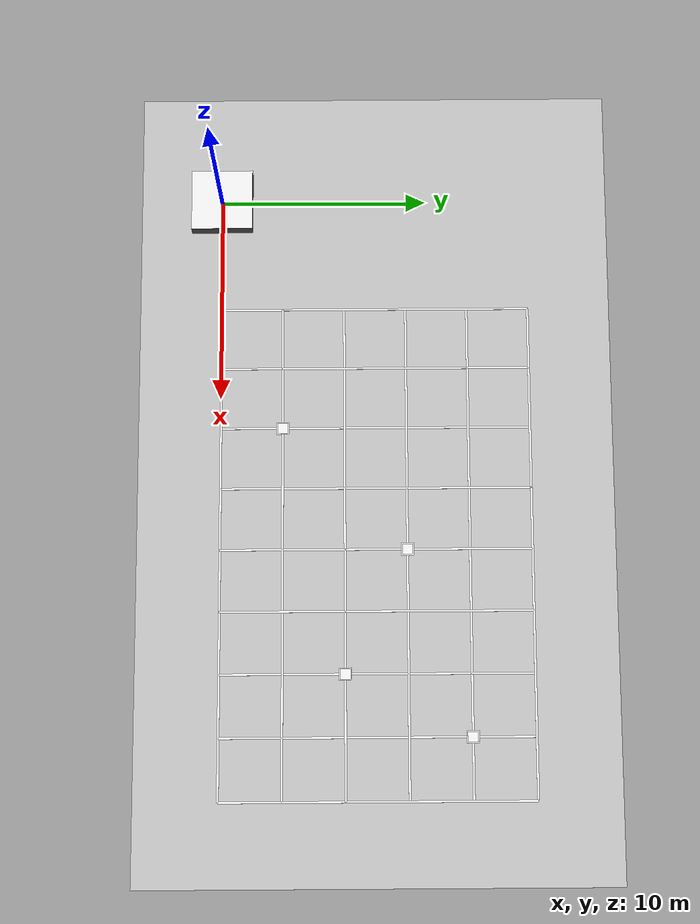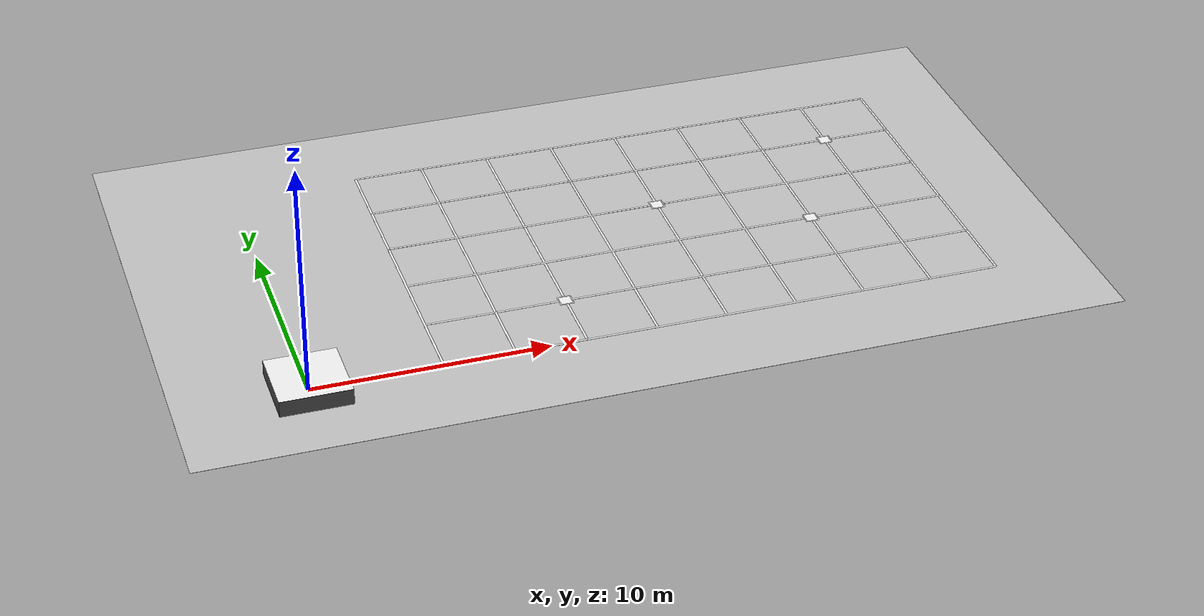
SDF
<?xml version="1.0" ?>
<sdf version="1.9">
  <model name="astroquad_grid_course">
    <static>true</static>

    <link name="course_link">
      <collision name="ground_collision">
        <pose>14.0 7.5 -0.005 0 0 0</pose>
        <geometry>
          <box>
            <size>39.0 23.0 0.01</size>
          </box>
        </geometry>
      </collision>

      <visual name="ground_visual">
        <pose>14.0 7.5 -0.005 0 0 0</pose>
        <geometry>
          <box>
            <size>39.0 23.0 0.01</size>
          </box>
        </geometry>
        <material>
          <ambient>0.8 0.8 0.8 1</ambient>
          <diffuse>0.8 0.8 0.8 1</diffuse>
          <specular>0.02 0.02 0.02 1</specular>
          <pbr>
            <metal>
              <albedo_map>materials/textures/Grass004_2K_Color_tiled3x.jpg</albedo_map>
              <roughness>0.95</roughness>
              <metalness>0.0</metalness>
            </metal>
          </pbr>
        </material>
      </visual>

      <!-- 3m x 3m x 0.7m vertiport box centered at origin, top surface at z = 0.7 -->
      <collision name="vertiport_box_collision">
        <pose>0 0 0.35 0 0 0</pose>
        <geometry>
          <box>
            <size>3.0 3.0 0.7</size>
          </box>
        </geometry>
      </collision>

      <visual name="vertiport_box_visual">
        <pose>0 0 0.35 0 0 0</pose>
        <geometry>
          <box>
            <size>3.0 3.0 0.7</size>
          </box>
        </geometry>
        <material>
          <ambient>0.25 0.25 0.25 1</ambient>
          <diffuse>0.25 0.25 0.25 1</diffuse>
          <specular>0.05 0.05 0.05 1</specular>
        </material>
      </visual>

      <!-- Vertiport top texture (3.0 x 3.0) slightly above the box top.
           Yaw 0deg leaves the texture image-up axis aligned with world +Y,
           90deg left of the previous +X-facing direction. -->
      <visual name="vertiport_top_texture">
        <pose degrees="true">0 0 0.701 0 0 0</pose>
        <geometry>
          <plane>
            <normal>0 0 1</normal>
            <size>3.0 3.0</size>
          </plane>
        </geometry>
        <material>
          <ambient>1 1 1 1</ambient>
          <diffuse>1 1 1 1</diffuse>
          <specular>0 0 0 1</specular>
          <pbr>
            <metal>
              <albedo_map>materials/textures/vertiport.png</albedo_map>
              <roughness>1.0</roughness>
              <metalness>0.0</metalness>
            </metal>
          </pbr>
        </material>
      </visual>

      <!-- 5x8 grid: cells of 3m, X intersections at 5.5..29.5, Y intersections at 0..15. -->
      <!-- White horizontal grid lines (constant Y, span X in [5.5, 29.5], length 24m) -->
      <visual name="grid_line_y0">
        <pose>17.5 0.0 0.006 0 0 0</pose>
        <geometry><box><size>24.0 0.10 0.008</size></box></geometry>
        <material>
          <ambient>1 1 1 1</ambient><diffuse>1 1 1 1</diffuse><emissive>0 0 0 1</emissive><specular>0.05 0.05 0.05 1</specular>
        </material>
      </visual>
      <visual name="grid_line_y3">
        <pose>17.5 3.0 0.006 0 0 0</pose>
        <geometry><box><size>24.0 0.10 0.008</size></box></geometry>
        <material>
          <ambient>1 1 1 1</ambient><diffuse>1 1 1 1</diffuse><emissive>0 0 0 1</emissive><specular>0.05 0.05 0.05 1</specular>
        </material>
      </visual>
      <visual name="grid_line_y6">
        <pose>17.5 6.0 0.006 0 0 0</pose>
        <geometry><box><size>24.0 0.10 0.008</size></box></geometry>
        <material>
          <ambient>1 1 1 1</ambient><diffuse>1 1 1 1</diffuse><emissive>0 0 0 1</emissive><specular>0.05 0.05 0.05 1</specular>
        </material>
      </visual>
      <visual name="grid_line_y9">
        <pose>17.5 9.0 0.006 0 0 0</pose>
        <geometry><box><size>24.0 0.10 0.008</size></box></geometry>
        <material>
          <ambient>1 1 1 1</ambient><diffuse>1 1 1 1</diffuse><emissive>0 0 0 1</emissive><specular>0.05 0.05 0.05 1</specular>
        </material>
      </visual>
      <visual name="grid_line_y12">
        <pose>17.5 12.0 0.006 0 0 0</pose>
        <geometry><box><size>24.0 0.10 0.008</size></box></geometry>
        <material>
          <ambient>1 1 1 1</ambient><diffuse>1 1 1 1</diffuse><emissive>0 0 0 1</emissive><specular>0.05 0.05 0.05 1</specular>
        </material>
      </visual>
      <visual name="grid_line_y15">
        <pose>17.5 15.0 0.006 0 0 0</pose>
        <geometry><box><size>24.0 0.10 0.008</size></box></geometry>
        <material>
          <ambient>1 1 1 1</ambient><diffuse>1 1 1 1</diffuse><emissive>0 0 0 1</emissive><specular>0.05 0.05 0.05 1</specular>
        </material>
      </visual>

      <!-- White vertical grid lines (constant X, span Y in [0, 15], length 15m) -->
      <visual name="grid_line_x5_5">
        <pose>5.5 7.5 0.006 0 0 0</pose>
        <geometry><box><size>0.10 15.0 0.008</size></box></geometry>
        <material>
          <ambient>1 1 1 1</ambient><diffuse>1 1 1 1</diffuse><emissive>0 0 0 1</emissive><specular>0.05 0.05 0.05 1</specular>
        </material>
      </visual>
      <visual name="grid_line_x8_5">
        <pose>8.5 7.5 0.006 0 0 0</pose>
        <geometry><box><size>0.10 15.0 0.008</size></box></geometry>
        <material>
          <ambient>1 1 1 1</ambient><diffuse>1 1 1 1</diffuse><emissive>0 0 0 1</emissive><specular>0.05 0.05 0.05 1</specular>
        </material>
      </visual>
      <visual name="grid_line_x11_5">
        <pose>11.5 7.5 0.006 0 0 0</pose>
        <geometry><box><size>0.10 15.0 0.008</size></box></geometry>
        <material>
          <ambient>1 1 1 1</ambient><diffuse>1 1 1 1</diffuse><emissive>0 0 0 1</emissive><specular>0.05 0.05 0.05 1</specular>
        </material>
      </visual>
      <visual name="grid_line_x14_5">
        <pose>14.5 7.5 0.006 0 0 0</pose>
        <geometry><box><size>0.10 15.0 0.008</size></box></geometry>
        <material>
          <ambient>1 1 1 1</ambient><diffuse>1 1 1 1</diffuse><emissive>0 0 0 1</emissive><specular>0.05 0.05 0.05 1</specular>
        </material>
      </visual>
      <visual name="grid_line_x17_5">
        <pose>17.5 7.5 0.006 0 0 0</pose>
        <geometry><box><size>0.10 15.0 0.008</size></box></geometry>
        <material>
          <ambient>1 1 1 1</ambient><diffuse>1 1 1 1</diffuse><emissive>0 0 0 1</emissive><specular>0.05 0.05 0.05 1</specular>
        </material>
      </visual>
      <visual name="grid_line_x20_5">
        <pose>20.5 7.5 0.006 0 0 0</pose>
        <geometry><box><size>0.10 15.0 0.008</size></box></geometry>
        <material>
          <ambient>1 1 1 1</ambient><diffuse>1 1 1 1</diffuse><emissive>0 0 0 1</emissive><specular>0.05 0.05 0.05 1</specular>
        </material>
      </visual>
      <visual name="grid_line_x23_5">
        <pose>23.5 7.5 0.006 0 0 0</pose>
        <geometry><box><size>0.10 15.0 0.008</size></box></geometry>
        <material>
          <ambient>1 1 1 1</ambient><diffuse>1 1 1 1</diffuse><emissive>0 0 0 1</emissive><specular>0.05 0.05 0.05 1</specular>
        </material>
      </visual>
      <visual name="grid_line_x26_5">
        <pose>26.5 7.5 0.006 0 0 0</pose>
        <geometry><box><size>0.10 15.0 0.008</size></box></geometry>
        <material>
          <ambient>1 1 1 1</ambient><diffuse>1 1 1 1</diffuse><emissive>0 0 0 1</emissive><specular>0.05 0.05 0.05 1</specular>
        </material>
      </visual>
      <visual name="grid_line_x29_5">
        <pose>29.5 7.5 0.006 0 0 0</pose>
        <geometry><box><size>0.10 15.0 0.008</size></box></geometry>
        <material>
          <ambient>1 1 1 1</ambient><diffuse>1 1 1 1</diffuse><emissive>0 0 0 1</emissive><specular>0.05 0.05 0.05 1</specular>
        </material>
      </visual>

      <visual name="marker_id1_quiet_zone">
        <pose>26.5 12.0 0.011 0 0 0</pose>
        <geometry><plane><normal>0 0 1</normal><size>0.60 0.60</size></plane></geometry>
        <material>
          <ambient>1 1 1 1</ambient><diffuse>1 1 1 1</diffuse><specular>0 0 0 1</specular>
        </material>
      </visual>
      <visual name="marker_id1_texture">
        <pose>26.5 12.0 0.012 0 0 0</pose>
        <geometry><plane><normal>0 0 1</normal><size>0.50 0.50</size></plane></geometry>
        <material>
          <ambient>1 1 1 1</ambient><diffuse>1 1 1 1</diffuse><specular>0 0 0 1</specular>
          <pbr><metal>
            <albedo_map>materials/textures/aruco_id1.png</albedo_map>
            <roughness>1.0</roughness><metalness>0.0</metalness>
          </metal></pbr>
        </material>
      </visual>

      <visual name="marker_id2_quiet_zone">
        <pose>23.5 6.0 0.011 0 0 0</pose>
        <geometry><plane><normal>0 0 1</normal><size>0.60 0.60</size></plane></geometry>
        <material>
          <ambient>1 1 1 1</ambient><diffuse>1 1 1 1</diffuse><specular>0 0 0 1</specular>
        </material>
      </visual>
      <visual name="marker_id2_texture">
        <pose>23.5 6.0 0.012 0 0 0</pose>
        <geometry><plane><normal>0 0 1</normal><size>0.50 0.50</size></plane></geometry>
        <material>
          <ambient>1 1 1 1</ambient><diffuse>1 1 1 1</diffuse><specular>0 0 0 1</specular>
          <pbr><metal>
            <albedo_map>materials/textures/aruco_id2.png</albedo_map>
            <roughness>1.0</roughness><metalness>0.0</metalness>
          </metal></pbr>
        </material>
      </visual>

      <visual name="marker_id3_quiet_zone">
        <pose>17.5 9.0 0.011 0 0 0</pose>
        <geometry><plane><normal>0 0 1</normal><size>0.60 0.60</size></plane></geometry>
        <material>
          <ambient>1 1 1 1</ambient><diffuse>1 1 1 1</diffuse><specular>0 0 0 1</specular>
        </material>
      </visual>
      <visual name="marker_id3_texture">
        <pose>17.5 9.0 0.012 0 0 0</pose>
        <geometry><plane><normal>0 0 1</normal><size>0.50 0.50</size></plane></geometry>
        <material>
          <ambient>1 1 1 1</ambient><diffuse>1 1 1 1</diffuse><specular>0 0 0 1</specular>
          <pbr><metal>
            <albedo_map>materials/textures/aruco_id3.png</albedo_map>
            <roughness>1.0</roughness><metalness>0.0</metalness>
          </metal></pbr>
        </material>
      </visual>

      <visual name="marker_id4_quiet_zone">
        <pose>11.5 3.0 0.011 0 0 0</pose>
        <geometry><plane><normal>0 0 1</normal><size>0.60 0.60</size></plane></geometry>
        <material>
          <ambient>1 1 1 1</ambient><diffuse>1 1 1 1</diffuse><specular>0 0 0 1</specular>
        </material>
      </visual>
      <visual name="marker_id4_texture">
        <pose>11.5 3.0 0.012 0 0 0</pose>
        <geometry><plane><normal>0 0 1</normal><size>0.50 0.50</size></plane></geometry>
        <material>
          <ambient>1 1 1 1</ambient><diffuse>1 1 1 1</diffuse><specular>0 0 0 1</specular>
          <pbr><metal>
            <albedo_map>materials/textures/aruco_id4.png</albedo_map>
            <roughness>1.0</roughness><metalness>0.0</metalness>
          </metal></pbr>
        </material>
      </visual>
    </link>
  </model>
</sdf>
